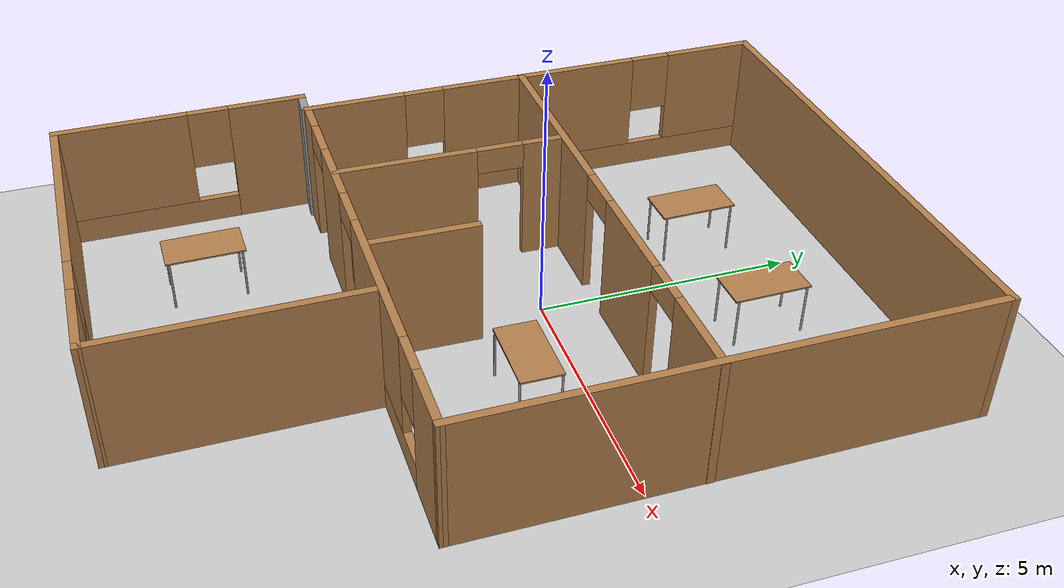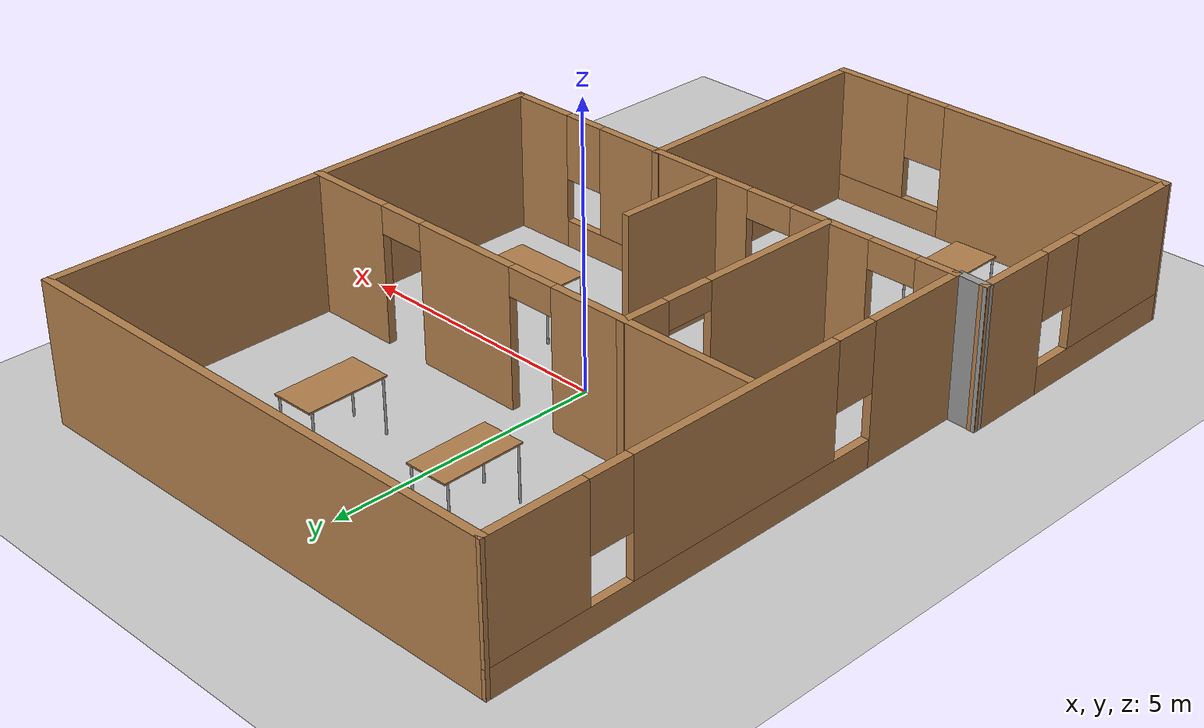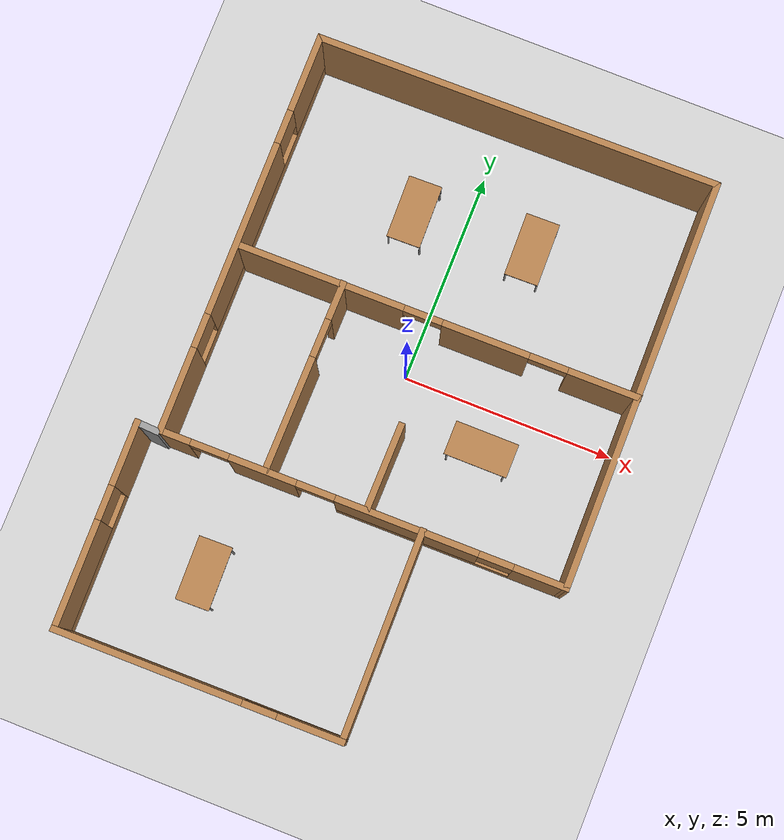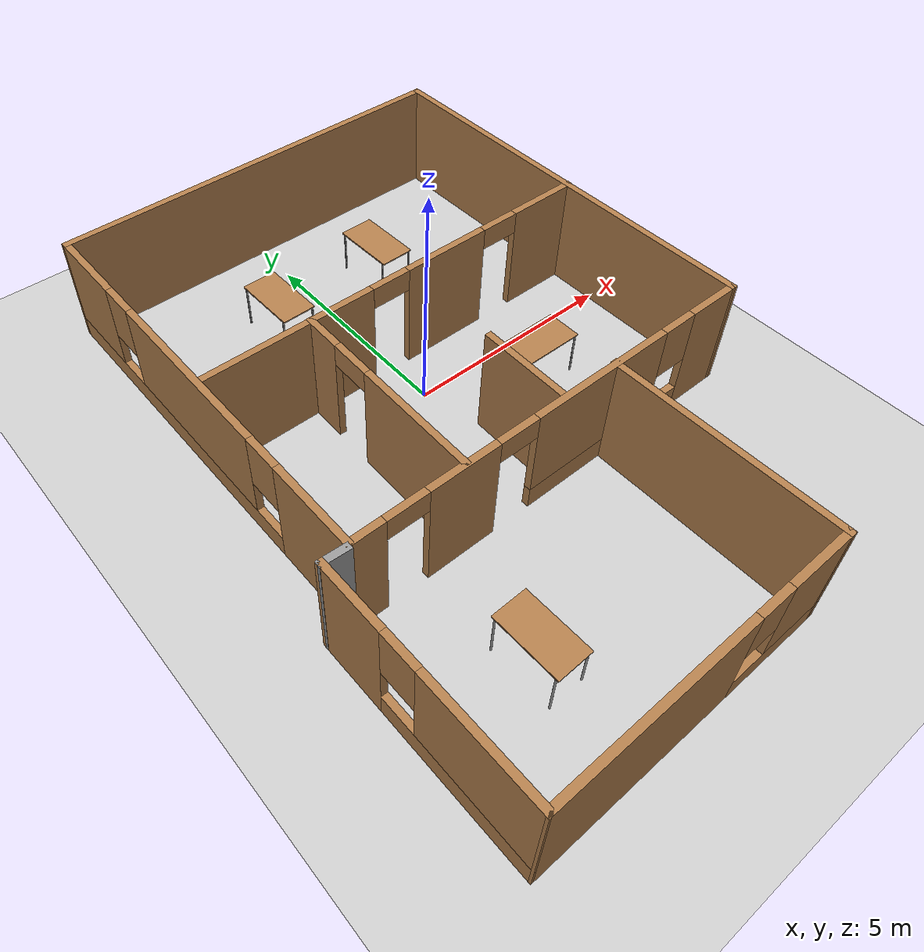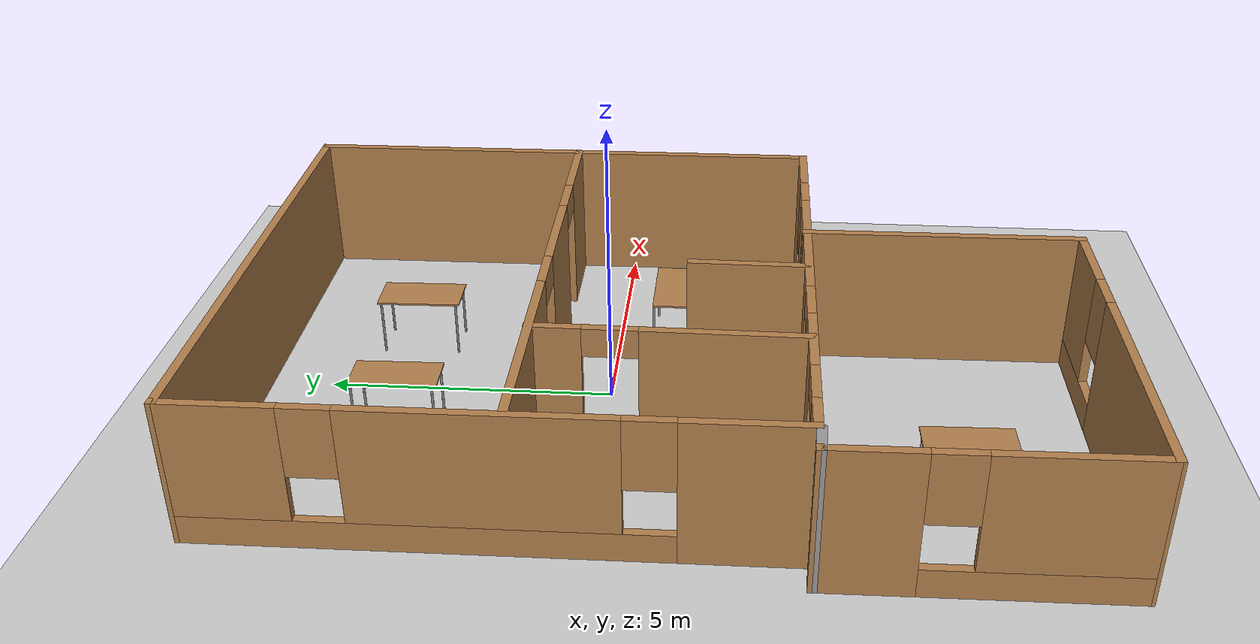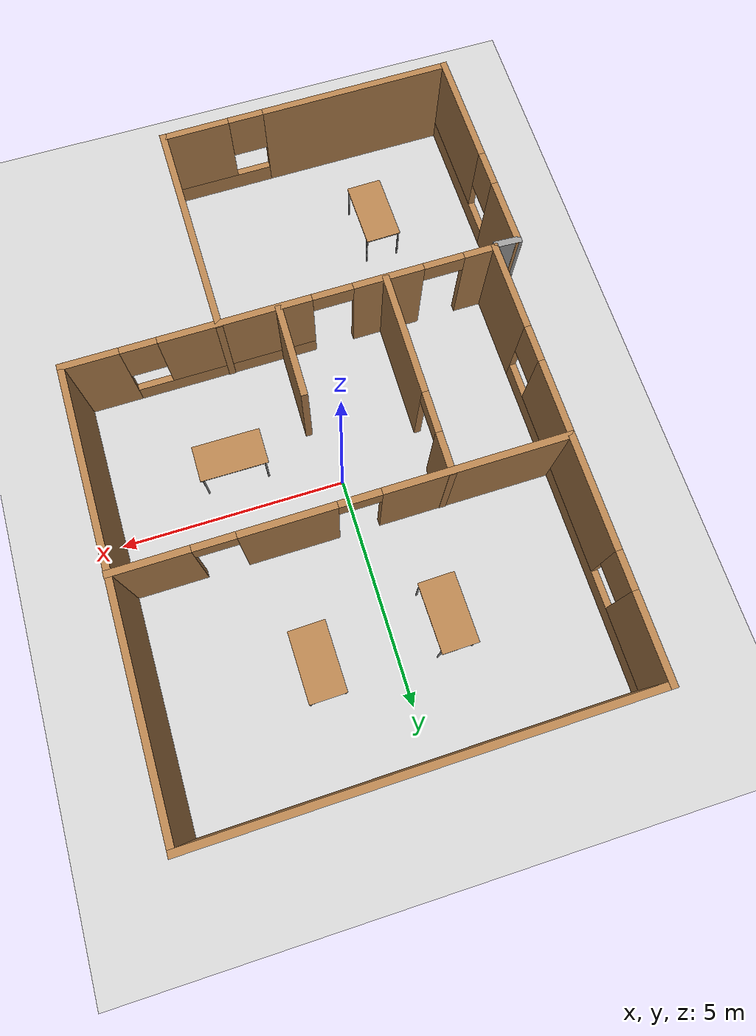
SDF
<sdf version="1.6">
 <world name="default">
  <light name="sun" type="directional">
   <pose>0 0 10 0 -0 0</pose>
   <diffuse>0.8 0.8 0.8 1</diffuse>
   <specular>0.2 0.2 0.2 1</specular>
   <attenuation>
    <range>1000</range>
    <constant>0.9</constant>
    <linear>0.01</linear>
    <quadratic>0.001</quadratic>
   </attenuation>
   <direction>-0.5 0.1 -0.9</direction>
  </light>
  <model name="ground_plane">
   <static>1</static>
   <link name="link">
    <collision name="collision">
     <geometry><plane><normal>0 0 1</normal><size>100 100</size></plane></geometry>
     <surface>
      <contact><collide_bitmask>65535</collide_bitmask></contact>
      <friction><ode><mu>100</mu><mu2>50</mu2></ode></friction>
     </surface>
    </collision>
    <visual name="visual">
     <cast_shadows>0</cast_shadows>
     <geometry><plane><normal>0 0 1</normal><size>100 100</size></plane></geometry>
     <material>
      <script><uri>file://media/materials/scripts/gazebo.material</uri><name>Gazebo/Grey</name></script>
     </material>
    </visual>
   </link>
  </model>
  <gravity>0 0 -9.8</gravity>
  <magnetic_field>6e-06 2.3e-05 -4.2e-05</magnetic_field>
  <atmosphere type="adiabatic"/>
  <physics name="default_physics" default="0" type="ode">
   <max_step_size>0.001</max_step_size>
   <real_time_factor>1</real_time_factor>
   <real_time_update_rate>1000</real_time_update_rate>
  </physics>
  <scene><ambient>0.4 0.4 0.4 1</ambient><background>0.7 0.7 0.7 1</background><shadows>1</shadows></scene>
  <spherical_coordinates>
   <surface_model>EARTH_WGS84</surface_model>
   <latitude_deg>0</latitude_deg>
   <longitude_deg>0</longitude_deg>
   <elevation>0</elevation>
   <heading_deg>0</heading_deg>
  </spherical_coordinates>
  <model name="mybuilding">
   <pose>0.026597 -0.991344 0 0 -0 0</pose>
   <link name="Wall_0">
    <collision name="Wall_0_Collision">
     <geometry><box><size>9.65693 0.15 2.5</size></box></geometry>
     <pose>0 0 1.25 0 -0 0</pose>
    </collision>
    <visual name="Wall_0_Visual">
     <pose>0 0 1.25 0 -0 0</pose>
     <geometry><box><size>9.65693 0.15 2.5</size></box></geometry>
     <material>
      <script><uri>file://media/materials/scripts/gazebo.material</uri><name>Gazebo/Wood</name></script>
      <ambient>1 1 1 1</ambient>
     </material>
     <meta><layer>0</layer></meta>
    </visual>
    <pose>4.9515 2.4171 0 0 -0 -1.5635</pose>
   </link>
   <link name="Wall_1">
    <pose>0.267555 -2.35937 0 0 -0 -3.13669</pose>
    <visual name="Wall_1_Visual_0">
     <pose>-4.14664 0 1.25 0 -0 0</pose>
     <geometry><box><size>1.29412 0.15 2.5</size></box></geometry>
     <material>
      <script><uri>file://media/materials/scripts/gazebo.material</uri><name>Gazebo/Wood</name></script>
      <ambient>1 1 1 1</ambient>
     </material>
     <meta><layer>0</layer></meta>
    </visual>
    <collision name="Wall_1_Collision_0">
     <geometry><box><size>1.29412 0.15 2.5</size></box></geometry>
     <pose>-4.14664 0 1.25 0 -0 0</pose>
    </collision>
    <visual name="Wall_1_Visual_1">
     <pose>2.32431 0 1.25 0 -0 0</pose>
     <geometry><box><size>1.57461 0.15 2.5</size></box></geometry>
     <material>
      <script><uri>file://media/materials/scripts/gazebo.material</uri><name>Gazebo/Wood</name></script>
      <ambient>1 1 1 1</ambient>
     </material>
     <meta><layer>0</layer></meta>
    </visual>
    <collision name="Wall_1_Collision_1">
     <geometry><box><size>1.57461 0.15 2.5</size></box></geometry>
     <pose>2.32431 0 1.25 0 -0 0</pose>
    </collision>
    <visual name="Wall_1_Visual_2">
     <pose>4.40266 0 1.25 0 -0 0</pose>
     <geometry><box><size>0.782083 0.15 2.5</size></box></geometry>
     <material>
      <script><uri>file://media/materials/scripts/gazebo.material</uri><name>Gazebo/Wood</name></script>
      <ambient>1 1 1 1</ambient>
     </material>
     <meta><layer>0</layer></meta>
    </visual>
    <collision name="Wall_1_Collision_2">
     <geometry><box><size>0.782083 0.15 2.5</size></box></geometry>
     <pose>4.40266 0 1.25 0 -0 0</pose>
    </collision>
    <visual name="Wall_1_Visual_3">
     <pose>-1.43128 0 0.25 0 -0 0</pose>
     <geometry><box><size>4.13659 0.15 0.5</size></box></geometry>
     <material>
      <script><uri>file://media/materials/scripts/gazebo.material</uri><name>Gazebo/Wood</name></script>
      <ambient>1 1 1 1</ambient>
     </material>
     <meta><layer>0</layer></meta>
    </visual>
    <collision name="Wall_1_Collision_3">
     <geometry><box><size>4.13659 0.15 0.5</size></box></geometry>
     <pose>-1.43128 0 0.25 0 -0 0</pose>
    </collision>
    <visual name="Wall_1_Visual_4">
     <pose>-1.03128 0 1.5 0 -0 0</pose>
     <geometry><box><size>3.33659 0.15 2</size></box></geometry>
     <material>
      <script><uri>file://media/materials/scripts/gazebo.material</uri><name>Gazebo/Wood</name></script>
      <ambient>1 1 1 1</ambient>
     </material>
     <meta><layer>0</layer></meta>
    </visual>
    <collision name="Wall_1_Collision_4">
     <geometry><box><size>3.33659 0.15 2</size></box></geometry>
     <pose>-1.03128 0 1.5 0 -0 0</pose>
    </collision>
    <visual name="Wall_1_Visual_5">
     <pose>-3.09958 0 1.9 0 -0 0</pose>
     <geometry><box><size>0.8 0.15 1.2</size></box></geometry>
     <material>
      <script><uri>file://media/materials/scripts/gazebo.material</uri><name>Gazebo/Wood</name></script>
      <ambient>1 1 1 1</ambient>
     </material>
     <meta><layer>0</layer></meta>
    </visual>
    <collision name="Wall_1_Collision_5">
     <geometry><box><size>0.8 0.15 1.2</size></box></geometry>
     <pose>-3.09958 0 1.9 0 -0 0</pose>
    </collision>
    <visual name="Wall_1_Visual_6">
     <pose>3.56162 0 2.25 0 -0 0</pose>
     <geometry><box><size>0.9 0.15 0.5</size></box></geometry>
     <material>
      <script><uri>file://media/materials/scripts/gazebo.material</uri><name>Gazebo/Wood</name></script>
      <ambient>1 1 1 1</ambient>
     </material>
     <meta><layer>0</layer></meta>
    </visual>
    <collision name="Wall_1_Collision_6">
     <geometry><box><size>0.9 0.15 0.5</size></box></geometry>
     <pose>3.56162 0 2.25 0 -0 0</pose>
    </collision>
    <visual name="Wall_1_Visual_7">
     <pose>1.08701 0 2.25 0 -0 0</pose>
     <geometry><box><size>0.9 0.15 0.5</size></box></geometry>
     <material>
      <script><uri>file://media/materials/scripts/gazebo.material</uri><name>Gazebo/Wood</name></script>
      <ambient>1 1 1 1</ambient>
     </material>
     <meta><layer>0</layer></meta>
    </visual>
    <collision name="Wall_1_Collision_7">
     <geometry><box><size>0.9 0.15 0.5</size></box></geometry>
     <pose>1.08701 0 2.25 0 -0 0</pose>
    </collision>
   </link>
   <link name="Wall_10">
    <pose>-4.95996 -4.79965 0 0 -0 -1.56113</pose>
    <visual name="Wall_10_Visual_0">
     <pose>-1.69495 0 1.25 0 -0 0</pose>
     <geometry><box><size>1.54818 0.15 2.5</size></box></geometry>
     <material>
      <script><uri>file://media/materials/scripts/gazebo.material</uri><name>Gazebo/Wood</name></script>
      <ambient>1 1 1 1</ambient>
     </material>
     <meta><layer>0</layer></meta>
    </visual>
    <collision name="Wall_10_Collision_0">
     <geometry><box><size>1.54818 0.15 2.5</size></box></geometry>
     <pose>-1.69495 0 1.25 0 -0 0</pose>
    </collision>
    <visual name="Wall_10_Visual_1">
     <pose>0.774092 0 0.25 0 -0 0</pose>
     <geometry><box><size>3.38991 0.15 0.5</size></box></geometry>
     <material>
      <script><uri>file://media/materials/scripts/gazebo.material</uri><name>Gazebo/Wood</name></script>
      <ambient>1 1 1 1</ambient>
     </material>
     <meta><layer>0</layer></meta>
    </visual>
    <collision name="Wall_10_Collision_1">
     <geometry><box><size>3.38991 0.15 0.5</size></box></geometry>
     <pose>0.774092 0 0.25 0 -0 0</pose>
    </collision>
    <visual name="Wall_10_Visual_2">
     <pose>1.17409 0 1.5 0 -0 0</pose>
     <geometry><box><size>2.58991 0.15 2</size></box></geometry>
     <material>
      <script><uri>file://media/materials/scripts/gazebo.material</uri><name>Gazebo/Wood</name></script>
      <ambient>1 1 1 1</ambient>
     </material>
     <meta><layer>0</layer></meta>
    </visual>
    <collision name="Wall_10_Collision_2">
     <geometry><box><size>2.58991 0.15 2</size></box></geometry>
     <pose>1.17409 0 1.5 0 -0 0</pose>
    </collision>
    <visual name="Wall_10_Visual_3">
     <pose>-0.520862 0 1.9 0 -0 0</pose>
     <geometry><box><size>0.8 0.15 1.2</size></box></geometry>
     <material>
      <script><uri>file://media/materials/scripts/gazebo.material</uri><name>Gazebo/Wood</name></script>
      <ambient>1 1 1 1</ambient>
     </material>
     <meta><layer>0</layer></meta>
    </visual>
    <collision name="Wall_10_Collision_3">
     <geometry><box><size>0.8 0.15 1.2</size></box></geometry>
     <pose>-0.520862 0 1.9 0 -0 0</pose>
    </collision>
   </link>
   <link name="Wall_11">
    <pose>-1.61759 -7.17054 0 0 -0 0.006969</pose>
    <visual name="Wall_11_Visual_0">
     <pose>-1.1858 0 1.25 0 -0 0</pose>
     <geometry><box><size>4.41692 0.15 2.5</size></box></geometry>
     <material>
      <script><uri>file://media/materials/scripts/gazebo.material</uri><name>Gazebo/Wood</name></script>
      <ambient>1 1 1 1</ambient>
     </material>
     <meta><layer>0</layer></meta>
    </visual>
    <collision name="Wall_11_Collision_0">
     <geometry><box><size>4.41692 0.15 2.5</size></box></geometry>
     <pose>-1.1858 0 1.25 0 -0 0</pose>
    </collision>
    <visual name="Wall_11_Visual_1">
     <pose>2.20846 0 0.25 0 -0 0</pose>
     <geometry><box><size>2.3716 0.15 0.5</size></box></geometry>
     <material>
      <script><uri>file://media/materials/scripts/gazebo.material</uri><name>Gazebo/Wood</name></script>
      <ambient>1 1 1 1</ambient>
     </material>
     <meta><layer>0</layer></meta>
    </visual>
    <collision name="Wall_11_Collision_1">
     <geometry><box><size>2.3716 0.15 0.5</size></box></geometry>
     <pose>2.20846 0 0.25 0 -0 0</pose>
    </collision>
    <visual name="Wall_11_Visual_2">
     <pose>2.60846 0 1.5 0 -0 0</pose>
     <geometry><box><size>1.5716 0.15 2</size></box></geometry>
     <material>
      <script><uri>file://media/materials/scripts/gazebo.material</uri><name>Gazebo/Wood</name></script>
      <ambient>1 1 1 1</ambient>
     </material>
     <meta><layer>0</layer></meta>
    </visual>
    <collision name="Wall_11_Collision_2">
     <geometry><box><size>1.5716 0.15 2</size></box></geometry>
     <pose>2.60846 0 1.5 0 -0 0</pose>
    </collision>
    <visual name="Wall_11_Visual_3">
     <pose>1.42266 0 1.9 0 -0 0</pose>
     <geometry><box><size>0.8 0.15 1.2</size></box></geometry>
     <material>
      <script><uri>file://media/materials/scripts/gazebo.material</uri><name>Gazebo/Wood</name></script>
      <ambient>1 1 1 1</ambient>
     </material>
     <meta><layer>0</layer></meta>
    </visual>
    <collision name="Wall_11_Collision_3">
     <geometry><box><size>0.8 0.15 1.2</size></box></geometry>
     <pose>1.42266 0 1.9 0 -0 0</pose>
    </collision>
   </link>
   <link name="Wall_12">
    <collision name="Wall_12_Collision">
     <geometry><box><size>4.96139 0.15 2.5</size></box></geometry>
     <pose>0 0 1.25 0 -0 0</pose>
    </collision>
    <visual name="Wall_12_Visual">
     <pose>0 0 1.25 0 -0 0</pose>
     <geometry><box><size>4.96139 0.15 2.5</size></box></geometry>
     <material>
      <script><uri>file://media/materials/scripts/gazebo.material</uri><name>Gazebo/Wood</name></script>
      <ambient>1 1 1 1</ambient>
     </material>
     <meta><layer>0</layer></meta>
    </visual>
    <pose>1.67852 -4.74182 0 0 -0 1.58041</pose>
   </link>
   <link name="Wall_14">
    <collision name="Wall_14_Collision">
     <geometry><box><size>2.09311 0.15 2.5</size></box></geometry>
     <pose>0 0 1.25 0 -0 0</pose>
    </collision>
    <visual name="Wall_14_Visual">
     <pose>0 0 1.25 0 -0 0</pose>
     <geometry><box><size>2.09311 0.15 2.5</size></box></geometry>
     <material>
      <script><uri>file://media/materials/scripts/gazebo.material</uri><name>Gazebo/Wood</name></script>
      <ambient>1 1 1 1</ambient>
     </material>
     <meta><layer>0</layer></meta>
    </visual>
    <pose>0.371643 -1.34162 0 0 -0 1.55889</pose>
   </link>
   <link name="Wall_2">
    <pose>-4.47422 2.35927 0 0 -0 1.57567</pose>
    <visual name="Wall_2_Visual_0">
     <pose>-3.79951 0 1.25 0 -0 0</pose>
     <geometry><box><size>2.03463 0.15 2.5</size></box></geometry>
     <material>
      <script><uri>file://media/materials/scripts/gazebo.material</uri><name>Gazebo/Wood</name></script>
      <ambient>1 1 1 1</ambient>
     </material>
     <meta><layer>0</layer></meta>
    </visual>
    <collision name="Wall_2_Collision_0">
     <geometry><box><size>2.03463 0.15 2.5</size></box></geometry>
     <pose>-3.79951 0 1.25 0 -0 0</pose>
    </collision>
    <visual name="Wall_2_Visual_1">
     <pose>1.01732 0 0.25 0 -0 0</pose>
     <geometry><box><size>7.59903 0.15 0.5</size></box></geometry>
     <material>
      <script><uri>file://media/materials/scripts/gazebo.material</uri><name>Gazebo/Wood</name></script>
      <ambient>1 1 1 1</ambient>
     </material>
     <meta><layer>0</layer></meta>
    </visual>
    <collision name="Wall_2_Collision_1">
     <geometry><box><size>7.59903 0.15 0.5</size></box></geometry>
     <pose>1.01732 0 0.25 0 -0 0</pose>
    </collision>
    <visual name="Wall_2_Visual_2">
     <pose>0.081238 0 1.5 0 -0 0</pose>
     <geometry><box><size>4.12687 0.15 2</size></box></geometry>
     <material>
      <script><uri>file://media/materials/scripts/gazebo.material</uri><name>Gazebo/Wood</name></script>
      <ambient>1 1 1 1</ambient>
     </material>
     <meta><layer>0</layer></meta>
    </visual>
    <collision name="Wall_2_Collision_2">
     <geometry><box><size>4.12687 0.15 2</size></box></geometry>
     <pose>0.081238 0 1.5 0 -0 0</pose>
    </collision>
    <visual name="Wall_2_Visual_3">
     <pose>3.88075 0 1.5 0 -0 0</pose>
     <geometry><box><size>1.87216 0.15 2</size></box></geometry>
     <material>
      <script><uri>file://media/materials/scripts/gazebo.material</uri><name>Gazebo/Wood</name></script>
      <ambient>1 1 1 1</ambient>
     </material>
     <meta><layer>0</layer></meta>
    </visual>
    <collision name="Wall_2_Collision_3">
     <geometry><box><size>1.87216 0.15 2</size></box></geometry>
     <pose>3.88075 0 1.5 0 -0 0</pose>
    </collision>
    <visual name="Wall_2_Visual_4">
     <pose>-2.3822 0 1.9 0 -0 0</pose>
     <geometry><box><size>0.8 0.15 1.2</size></box></geometry>
     <material>
      <script><uri>file://media/materials/scripts/gazebo.material</uri><name>Gazebo/Wood</name></script>
      <ambient>1 1 1 1</ambient>
     </material>
     <meta><layer>0</layer></meta>
    </visual>
    <collision name="Wall_2_Collision_4">
     <geometry><box><size>0.8 0.15 1.2</size></box></geometry>
     <pose>-2.3822 0 1.9 0 -0 0</pose>
    </collision>
    <visual name="Wall_2_Visual_5">
     <pose>2.54467 0 1.9 0 -0 0</pose>
     <geometry><box><size>0.8 0.15 1.2</size></box></geometry>
     <material>
      <script><uri>file://media/materials/scripts/gazebo.material</uri><name>Gazebo/Wood</name></script>
      <ambient>1 1 1 1</ambient>
     </material>
     <meta><layer>0</layer></meta>
    </visual>
    <collision name="Wall_2_Collision_5">
     <geometry><box><size>0.8 0.15 1.2</size></box></geometry>
     <pose>2.54467 0 1.9 0 -0 0</pose>
    </collision>
   </link>
   <link name="Wall_3">
    <collision name="Wall_3_Collision">
     <geometry><box><size>9.56461 0.15 2.5</size></box></geometry>
     <pose>0 0 1.25 0 -0 0</pose>
    </collision>
    <visual name="Wall_3_Visual">
     <pose>0 0 1.25 0 -0 0</pose>
     <geometry><box><size>9.56461 0.15 2.5</size></box></geometry>
     <material>
      <script><uri>file://media/materials/scripts/gazebo.material</uri><name>Gazebo/Wood</name></script>
      <ambient>1 1 1 1</ambient>
     </material>
     <meta><layer>0</layer></meta>
    </visual>
    <pose>0.209729 7.14731 0 0 -0 0.009828</pose>
   </link>
   <link name="Wall_5">
    <pose>0.25599 2.08171 0 0 -0 0.004914</pose>
    <visual name="Wall_5_Visual_0">
     <pose>-2.77243 0 1.25 0 -0 0</pose>
     <geometry><box><size>4.01942 0.15 2.5</size></box></geometry>
     <material>
      <script><uri>file://media/materials/scripts/gazebo.material</uri><name>Gazebo/Wood</name></script>
      <ambient>1 1 1 1</ambient>
     </material>
     <meta><layer>0</layer></meta>
    </visual>
    <collision name="Wall_5_Collision_0">
     <geometry><box><size>4.01942 0.15 2.5</size></box></geometry>
     <pose>-2.77243 0 1.25 0 -0 0</pose>
    </collision>
    <visual name="Wall_5_Visual_1">
     <pose>1.15606 0 1.25 0 -0 0</pose>
     <geometry><box><size>2.03755 0.15 2.5</size></box></geometry>
     <material>
      <script><uri>file://media/materials/scripts/gazebo.material</uri><name>Gazebo/Wood</name></script>
      <ambient>1 1 1 1</ambient>
     </material>
     <meta><layer>0</layer></meta>
    </visual>
    <collision name="Wall_5_Collision_1">
     <geometry><box><size>2.03755 0.15 2.5</size></box></geometry>
     <pose>1.15606 0 1.25 0 -0 0</pose>
    </collision>
    <visual name="Wall_5_Visual_2">
     <pose>3.92849 0 1.25 0 -0 0</pose>
     <geometry><box><size>1.7073 0.15 2.5</size></box></geometry>
     <material>
      <script><uri>file://media/materials/scripts/gazebo.material</uri><name>Gazebo/Wood</name></script>
      <ambient>1 1 1 1</ambient>
     </material>
     <meta><layer>0</layer></meta>
    </visual>
    <collision name="Wall_5_Collision_2">
     <geometry><box><size>1.7073 0.15 2.5</size></box></geometry>
     <pose>3.92849 0 1.25 0 -0 0</pose>
    </collision>
    <visual name="Wall_5_Visual_3">
     <pose>-0.312714 0 2.25 0 -0 0</pose>
     <geometry><box><size>0.9 0.15 0.5</size></box></geometry>
     <material>
      <script><uri>file://media/materials/scripts/gazebo.material</uri><name>Gazebo/Wood</name></script>
      <ambient>1 1 1 1</ambient>
     </material>
     <meta><layer>0</layer></meta>
    </visual>
    <collision name="Wall_5_Collision_3">
     <geometry><box><size>0.9 0.15 0.5</size></box></geometry>
     <pose>-0.312714 0 2.25 0 -0 0</pose>
    </collision>
    <visual name="Wall_5_Visual_4">
     <pose>2.62484 0 2.25 0 -0 0</pose>
     <geometry><box><size>0.9 0.15 0.5</size></box></geometry>
     <material>
      <script><uri>file://media/materials/scripts/gazebo.material</uri><name>Gazebo/Wood</name></script>
      <ambient>1 1 1 1</ambient>
     </material>
     <meta><layer>0</layer></meta>
    </visual>
    <collision name="Wall_5_Collision_4">
     <geometry><box><size>0.9 0.15 0.5</size></box></geometry>
     <pose>2.62484 0 2.25 0 -0 0</pose>
    </collision>
   </link>
   <link name="Wall_7">
    <pose>-1.97611 -0.127266 0 0 -0 -1.58127</pose>
    <visual name="Wall_7_Visual_0">
     <pose>-1.82397 0 1.25 0 -0 0</pose>
     <geometry><box><size>0.920243 0.15 2.5</size></box></geometry>
     <material>
      <script><uri>file://media/materials/scripts/gazebo.material</uri><name>Gazebo/Wood</name></script>
      <ambient>1 1 1 1</ambient>
     </material>
     <meta><layer>0</layer></meta>
    </visual>
    <collision name="Wall_7_Collision_0">
     <geometry><box><size>0.920243 0.15 2.5</size></box></geometry>
     <pose>-1.82397 0 1.25 0 -0 0</pose>
    </collision>
    <visual name="Wall_7_Visual_1">
     <pose>0.910122 0 1.25 0 -0 0</pose>
     <geometry><box><size>2.74795 0.15 2.5</size></box></geometry>
     <material>
      <script><uri>file://media/materials/scripts/gazebo.material</uri><name>Gazebo/Wood</name></script>
      <ambient>1 1 1 1</ambient>
     </material>
     <meta><layer>0</layer></meta>
    </visual>
    <collision name="Wall_7_Collision_1">
     <geometry><box><size>2.74795 0.15 2.5</size></box></geometry>
     <pose>0.910122 0 1.25 0 -0 0</pose>
    </collision>
    <visual name="Wall_7_Visual_2">
     <pose>-0.913851 0 2.25 0 -0 0</pose>
     <geometry><box><size>0.9 0.15 0.5</size></box></geometry>
     <material>
      <script><uri>file://media/materials/scripts/gazebo.material</uri><name>Gazebo/Wood</name></script>
      <ambient>1 1 1 1</ambient>
     </material>
     <meta><layer>0</layer></meta>
    </visual>
    <collision name="Wall_7_Collision_2">
     <geometry><box><size>0.9 0.15 0.5</size></box></geometry>
     <pose>-0.913851 0 2.25 0 -0 0</pose>
    </collision>
   </link>
   <link name="Wall_9">
    <collision name="Wall_9_Collision">
     <geometry><box><size>0.61319 0.15 2.5</size></box></geometry>
     <pose>0 0 1.25 0 -0 0</pose>
    </collision>
    <visual name="Wall_9_Visual">
     <pose>0 0 1.25 0 -0 0</pose>
     <geometry><box><size>0.61319 0.15 2.5</size></box></geometry>
     <material>
      <script><uri>file://media/materials/scripts/gazebo.material</uri><name>Gazebo/Grey</name></script>
      <ambient>1 1 1 1</ambient>
     </material>
     <meta><layer>0</layer></meta>
    </visual>
    <pose>-4.75179 -2.4172 0 0 -0 3.09163</pose>
   </link>
   <static>1</static>
  </model>
  <model name="table">
   <static>1</static>
   <link name="link">
    <collision name="surface">
     <pose>0 0 1 0 -0 0</pose>
     <geometry><box><size>1.5 0.8 0.03</size></box></geometry>
     <surface><friction><ode><mu>0.6</mu><mu2>0.6</mu2></ode></friction></surface>
    </collision>
    <visual name="visual1">
     <pose>0 0 1 0 -0 0</pose>
     <geometry><box><size>1.5 0.8 0.03</size></box></geometry>
     <material>
      <script><uri>file://media/materials/scripts/gazebo.material</uri><name>Gazebo/Wood</name></script>
     </material>
    </visual>
    <collision name="front_left_leg">
     <pose>0.68 0.38 0.5 0 -0 0</pose>
     <geometry><cylinder><radius>0.02</radius><length>1</length></cylinder></geometry>
    </collision>
    <visual name="front_left_leg">
     <pose>0.68 0.38 0.5 0 -0 0</pose>
     <geometry><cylinder><radius>0.02</radius><length>1</length></cylinder></geometry>
     <material>
      <script><uri>file://media/materials/scripts/gazebo.material</uri><name>Gazebo/Grey</name></script>
     </material>
    </visual>
    <collision name="front_right_leg">
     <pose>0.68 -0.38 0.5 0 -0 0</pose>
     <geometry><cylinder><radius>0.02</radius><length>1</length></cylinder></geometry>
    </collision>
    <visual name="front_right_leg">
     <pose>0.68 -0.38 0.5 0 -0 0</pose>
     <geometry><cylinder><radius>0.02</radius><length>1</length></cylinder></geometry>
     <material>
      <script><uri>file://media/materials/scripts/gazebo.material</uri><name>Gazebo/Grey</name></script>
     </material>
    </visual>
    <collision name="back_right_leg">
     <pose>-0.68 -0.38 0.5 0 -0 0</pose>
     <geometry><cylinder><radius>0.02</radius><length>1</length></cylinder></geometry>
    </collision>
    <visual name="back_right_leg">
     <pose>-0.68 -0.38 0.5 0 -0 0</pose>
     <geometry><cylinder><radius>0.02</radius><length>1</length></cylinder></geometry>
     <material>
      <script><uri>file://media/materials/scripts/gazebo.material</uri><name>Gazebo/Grey</name></script>
     </material>
    </visual>
    <collision name="back_left_leg">
     <pose>-0.68 0.38 0.5 0 -0 0</pose>
     <geometry><cylinder><radius>0.02</radius><length>1</length></cylinder></geometry>
    </collision>
    <visual name="back_left_leg">
     <pose>-0.68 0.38 0.5 0 -0 0</pose>
     <geometry><cylinder><radius>0.02</radius><length>1</length></cylinder></geometry>
     <material>
      <script><uri>file://media/materials/scripts/gazebo.material</uri><name>Gazebo/Grey</name></script>
     </material>
    </visual>
   </link>
   <pose>2.21175 -1.01254 0 0 -0 0</pose>
  </model>
  <model name="table_0">
   <static>1</static>
   <link name="link">
    <collision name="surface">
     <pose>0 0 1 0 -0 0</pose>
     <geometry><box><size>1.5 0.8 0.03</size></box></geometry>
     <surface><friction><ode><mu>0.6</mu><mu2>0.6</mu2></ode></friction></surface>
    </collision>
    <visual name="visual1">
     <pose>0 0 1 0 -0 0</pose>
     <geometry><box><size>1.5 0.8 0.03</size></box></geometry>
     <material>
      <script><uri>file://media/materials/scripts/gazebo.material</uri><name>Gazebo/Wood</name></script>
     </material>
    </visual>
    <collision name="front_left_leg">
     <pose>0.68 0.38 0.5 0 -0 0</pose>
     <geometry><cylinder><radius>0.02</radius><length>1</length></cylinder></geometry>
    </collision>
    <visual name="front_left_leg">
     <pose>0.68 0.38 0.5 0 -0 0</pose>
     <geometry><cylinder><radius>0.02</radius><length>1</length></cylinder></geometry>
     <material>
      <script><uri>file://media/materials/scripts/gazebo.material</uri><name>Gazebo/Grey</name></script>
     </material>
    </visual>
    <collision name="front_right_leg">
     <pose>0.68 -0.38 0.5 0 -0 0</pose>
     <geometry><cylinder><radius>0.02</radius><length>1</length></cylinder></geometry>
    </collision>
    <visual name="front_right_leg">
     <pose>0.68 -0.38 0.5 0 -0 0</pose>
     <geometry><cylinder><radius>0.02</radius><length>1</length></cylinder></geometry>
     <material>
      <script><uri>file://media/materials/scripts/gazebo.material</uri><name>Gazebo/Grey</name></script>
     </material>
    </visual>
    <collision name="back_right_leg">
     <pose>-0.68 -0.38 0.5 0 -0 0</pose>
     <geometry><cylinder><radius>0.02</radius><length>1</length></cylinder></geometry>
    </collision>
    <visual name="back_right_leg">
     <pose>-0.68 -0.38 0.5 0 -0 0</pose>
     <geometry><cylinder><radius>0.02</radius><length>1</length></cylinder></geometry>
     <material>
      <script><uri>file://media/materials/scripts/gazebo.material</uri><name>Gazebo/Grey</name></script>
     </material>
    </visual>
    <collision name="back_left_leg">
     <pose>-0.68 0.38 0.5 0 -0 0</pose>
     <geometry><cylinder><radius>0.02</radius><length>1</length></cylinder></geometry>
    </collision>
    <visual name="back_left_leg">
     <pose>-0.68 0.38 0.5 0 -0 0</pose>
     <geometry><cylinder><radius>0.02</radius><length>1</length></cylinder></geometry>
     <material>
      <script><uri>file://media/materials/scripts/gazebo.material</uri><name>Gazebo/Grey</name></script>
     </material>
    </visual>
   </link>
   <pose>-1.17122 3.50496 0 0 0 -1.5505</pose>
  </model>
  <model name="table_0_clone">
   <static>1</static>
   <link name="link">
    <collision name="surface">
     <pose>0 0 1 0 -0 0</pose>
     <geometry><box><size>1.5 0.8 0.03</size></box></geometry>
     <surface><friction><ode><mu>0.6</mu><mu2>0.6</mu2></ode></friction></surface>
    </collision>
    <visual name="visual1">
     <pose>0 0 1 0 -0 0</pose>
     <geometry><box><size>1.5 0.8 0.03</size></box></geometry>
     <material>
      <script><uri>file://media/materials/scripts/gazebo.material</uri><name>Gazebo/Wood</name></script>
     </material>
    </visual>
    <collision name="front_left_leg">
     <pose>0.68 0.38 0.5 0 -0 0</pose>
     <geometry><cylinder><radius>0.02</radius><length>1</length></cylinder></geometry>
    </collision>
    <visual name="front_left_leg">
     <pose>0.68 0.38 0.5 0 -0 0</pose>
     <geometry><cylinder><radius>0.02</radius><length>1</length></cylinder></geometry>
     <material>
      <script><uri>file://media/materials/scripts/gazebo.material</uri><name>Gazebo/Grey</name></script>
     </material>
    </visual>
    <collision name="front_right_leg">
     <pose>0.68 -0.38 0.5 0 -0 0</pose>
     <geometry><cylinder><radius>0.02</radius><length>1</length></cylinder></geometry>
    </collision>
    <visual name="front_right_leg">
     <pose>0.68 -0.38 0.5 0 -0 0</pose>
     <geometry><cylinder><radius>0.02</radius><length>1</length></cylinder></geometry>
     <material>
      <script><uri>file://media/materials/scripts/gazebo.material</uri><name>Gazebo/Grey</name></script>
     </material>
    </visual>
    <collision name="back_right_leg">
     <pose>-0.68 -0.38 0.5 0 -0 0</pose>
     <geometry><cylinder><radius>0.02</radius><length>1</length></cylinder></geometry>
    </collision>
    <visual name="back_right_leg">
     <pose>-0.68 -0.38 0.5 0 -0 0</pose>
     <geometry><cylinder><radius>0.02</radius><length>1</length></cylinder></geometry>
     <material>
      <script><uri>file://media/materials/scripts/gazebo.material</uri><name>Gazebo/Grey</name></script>
     </material>
    </visual>
    <collision name="back_left_leg">
     <pose>-0.68 0.38 0.5 0 -0 0</pose>
     <geometry><cylinder><radius>0.02</radius><length>1</length></cylinder></geometry>
    </collision>
    <visual name="back_left_leg">
     <pose>-0.68 0.38 0.5 0 -0 0</pose>
     <geometry><cylinder><radius>0.02</radius><length>1</length></cylinder></geometry>
     <material>
      <script><uri>file://media/materials/scripts/gazebo.material</uri><name>Gazebo/Grey</name></script>
     </material>
    </visual>
   </link>
   <pose>1.63388 3.66838 0 0 0 -1.5505</pose>
  </model>
  <model name="table_0_clone_0">
   <static>1</static>
   <link name="link">
    <collision name="surface">
     <pose>0 0 1 0 -0 0</pose>
     <geometry><box><size>1.5 0.8 0.03</size></box></geometry>
     <surface><friction><ode><mu>0.6</mu><mu2>0.6</mu2></ode></friction></surface>
    </collision>
    <visual name="visual1">
     <pose>0 0 1 0 -0 0</pose>
     <geometry><box><size>1.5 0.8 0.03</size></box></geometry>
     <material>
      <script><uri>file://media/materials/scripts/gazebo.material</uri><name>Gazebo/Wood</name></script>
     </material>
    </visual>
    <collision name="front_left_leg">
     <pose>0.68 0.38 0.5 0 -0 0</pose>
     <geometry><cylinder><radius>0.02</radius><length>1</length></cylinder></geometry>
    </collision>
    <visual name="front_left_leg">
     <pose>0.68 0.38 0.5 0 -0 0</pose>
     <geometry><cylinder><radius>0.02</radius><length>1</length></cylinder></geometry>
     <material>
      <script><uri>file://media/materials/scripts/gazebo.material</uri><name>Gazebo/Grey</name></script>
     </material>
    </visual>
    <collision name="front_right_leg">
     <pose>0.68 -0.38 0.5 0 -0 0</pose>
     <geometry><cylinder><radius>0.02</radius><length>1</length></cylinder></geometry>
    </collision>
    <visual name="front_right_leg">
     <pose>0.68 -0.38 0.5 0 -0 0</pose>
     <geometry><cylinder><radius>0.02</radius><length>1</length></cylinder></geometry>
     <material>
      <script><uri>file://media/materials/scripts/gazebo.material</uri><name>Gazebo/Grey</name></script>
     </material>
    </visual>
    <collision name="back_right_leg">
     <pose>-0.68 -0.38 0.5 0 -0 0</pose>
     <geometry><cylinder><radius>0.02</radius><length>1</length></cylinder></geometry>
    </collision>
    <visual name="back_right_leg">
     <pose>-0.68 -0.38 0.5 0 -0 0</pose>
     <geometry><cylinder><radius>0.02</radius><length>1</length></cylinder></geometry>
     <material>
      <script><uri>file://media/materials/scripts/gazebo.material</uri><name>Gazebo/Grey</name></script>
     </material>
    </visual>
    <collision name="back_left_leg">
     <pose>-0.68 0.38 0.5 0 -0 0</pose>
     <geometry><cylinder><radius>0.02</radius><length>1</length></cylinder></geometry>
    </collision>
    <visual name="back_left_leg">
     <pose>-0.68 0.38 0.5 0 -0 0</pose>
     <geometry><cylinder><radius>0.02</radius><length>1</length></cylinder></geometry>
     <material>
      <script><uri>file://media/materials/scripts/gazebo.material</uri><name>Gazebo/Grey</name></script>
     </material>
    </visual>
   </link>
   <pose>-2.51268 -5.85382 0 0 0 -1.5505</pose>
  </model>
 </world>
</sdf>
